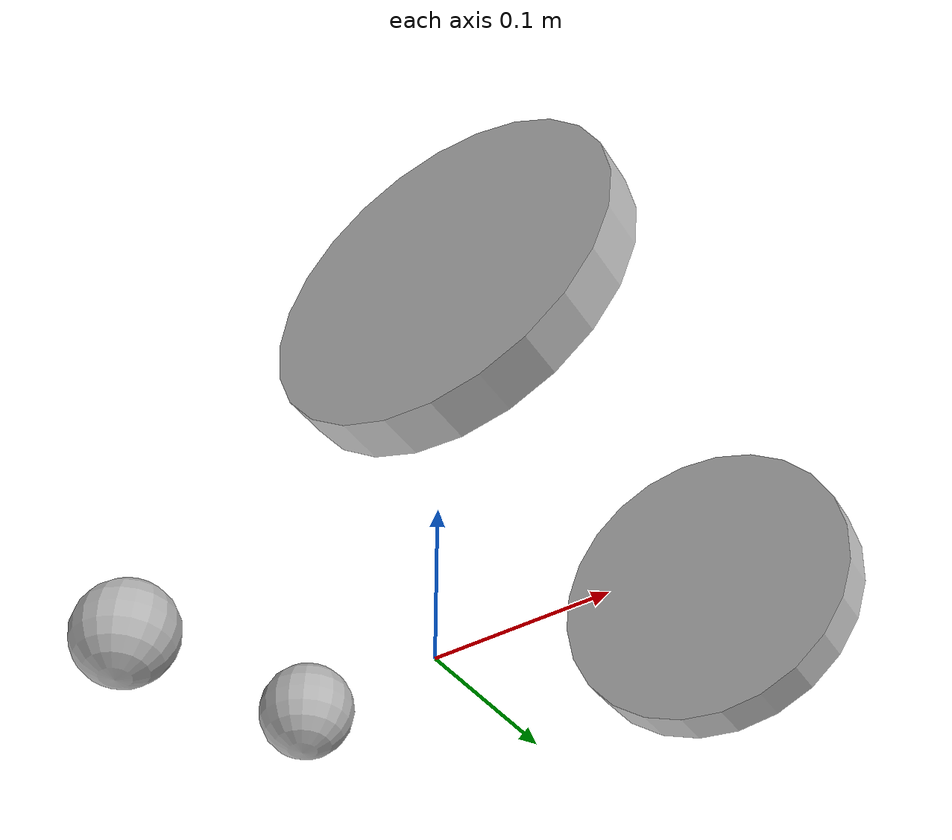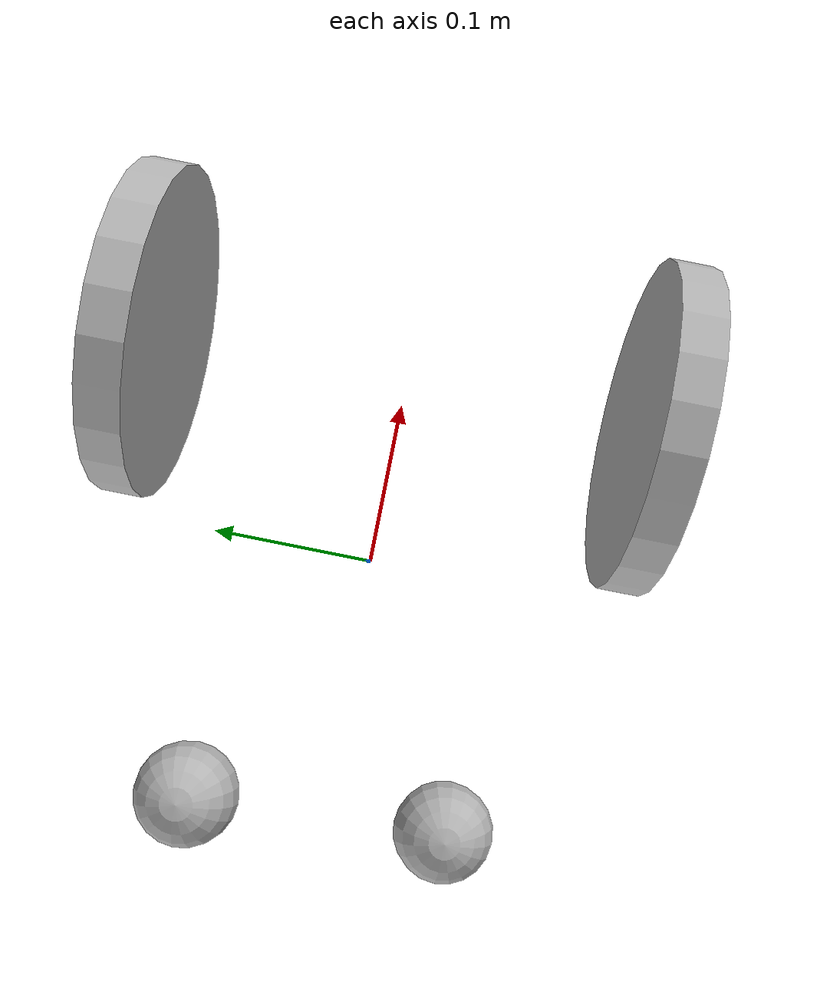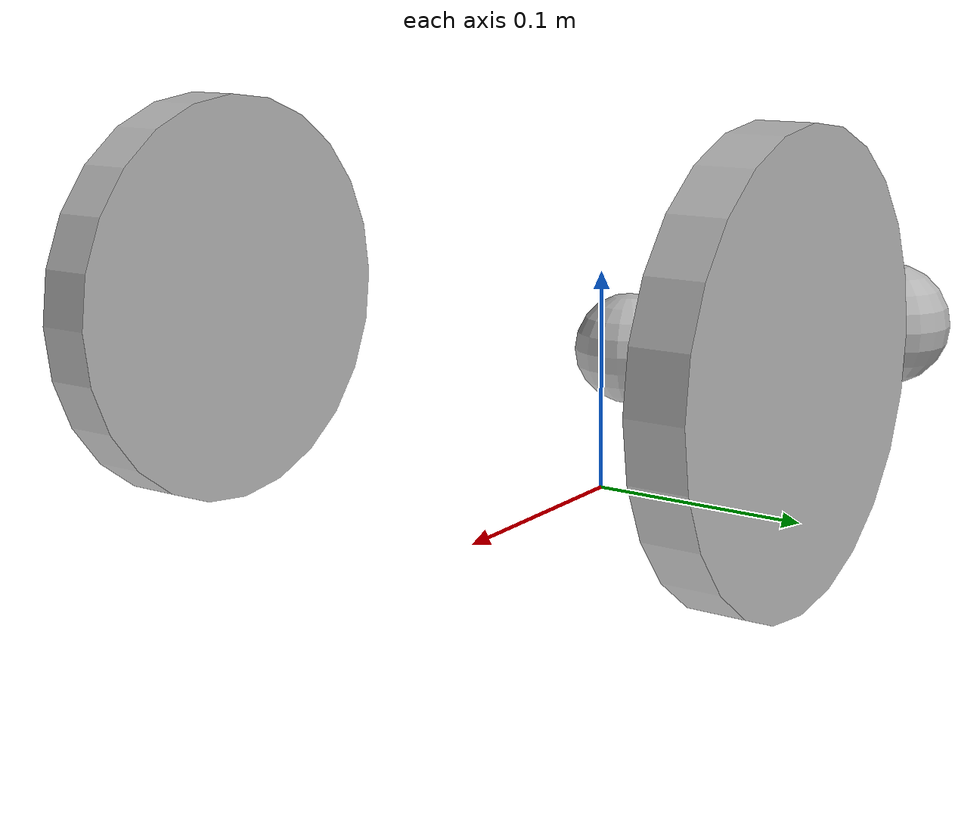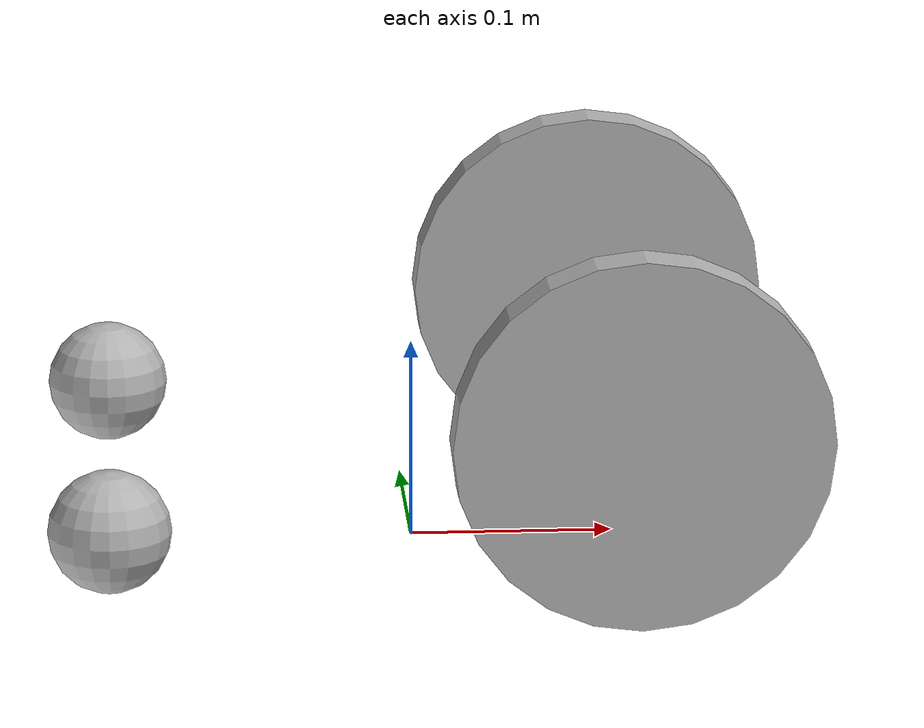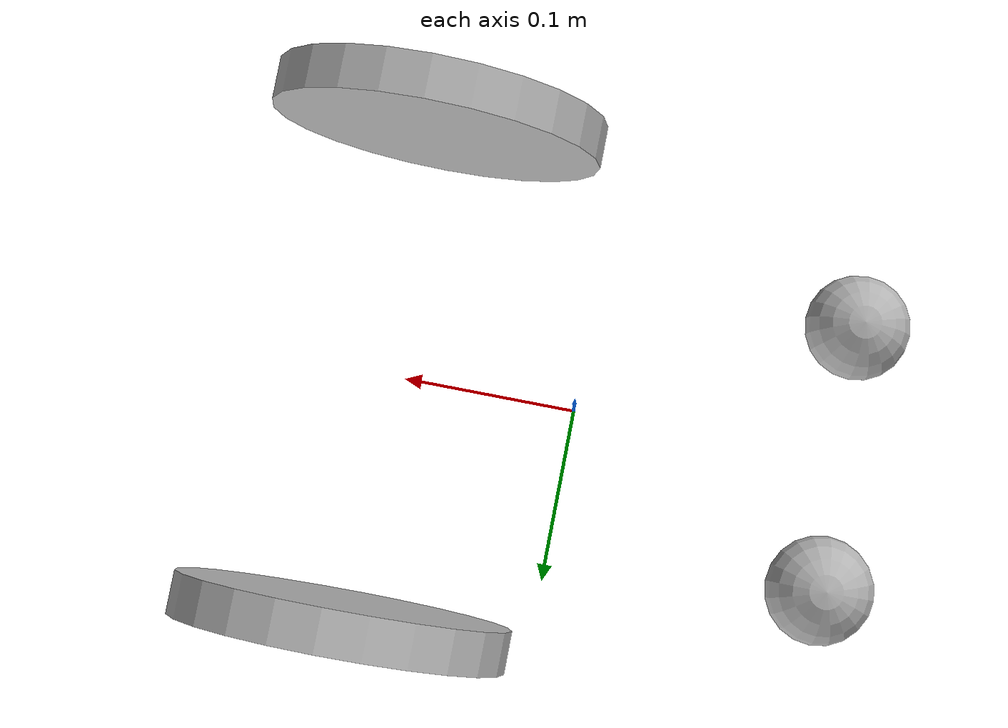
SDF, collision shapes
<?xml version='1.0'?>
<sdf version='1.5'>

  <model name='pico'>

   <link name='base_link'>
	  <visual name='base_link_visual'>
        <pose>0.0765 0 0.3975 1.5708 -5.55112e-17 1.5708</pose>
        <geometry>
          <mesh>
            <scale>0.001 0.001 0.001</scale>
            <uri>model://media/meshes/torso.dae</uri>
          </mesh>
        </geometry>
      </visual>
      <collision name='base_link_collision_left_castor'>
        <pose>-0.15 0.075 0.06 0 -0 0</pose>
        <geometry>
          <sphere>
            <radius>0.03</radius>
          </sphere>
        </geometry>
      </collision>
      <collision name='base_link_collision_right_castor'>
        <pose>-0.15 -0.075 0.03 0 -0 0</pose>
        <geometry>
          <sphere>
            <radius>0.03</radius>
          </sphere>
        </geometry>
      </collision>

      <visual name='base_link_visual_laser'>
        <pose>0.04 0 0.325 0 -0 0</pose>
        <geometry>
          <box>
            <size>0.04 0.04 0.039</size>
          </box>
        </geometry>
      </visual>
      <visual name='base_link_visual_lasertop'>
        <pose>0.04 0 0.349 0 -0 0</pose>
        <geometry>
          <box>
            <size>0.04 0.04 0.01</size>
          </box>
        </geometry>
      </visual>
      <visual name='base_link_visual_left_castor'>
        <pose>-0.15 0.075 0.03 0 -0 0</pose>
        <geometry>
          <sphere>
            <radius>0.03</radius>
          </sphere>
        </geometry>
      </visual>
      <visual name='base_link_visual_right_castor'>
        <pose>-0.15 -0.075 0.03 0 -0 0</pose>
        <geometry>
          <sphere>
            <radius>0.03</radius>
          </sphere>
        </geometry>
      </visual>
           <gravity>1</gravity>
      <velocity_decay>
        <linear>0</linear>
        <angular>0</angular>
      </velocity_decay>
      <self_collide>0</self_collide>

      <sensor name='laser' type='ray'>
        <ray>
          <scan>
            <horizontal>
              <samples>1000</samples>
              <resolution>1</resolution>
              <min_angle>-2.2</min_angle>
              <max_angle>2.2</max_angle>
            </horizontal>
            <vertical>
              <samples>1</samples>
              <resolution>1</resolution>
              <min_angle>0</min_angle>
              <max_angle>0</max_angle>
            </vertical>
          </scan>
          <range>
            <min>0.01</min>
            <max>15</max>
            <resolution>0.01</resolution>
          </range>
		</ray>

      <plugin name="gazebo_ros_laser" filename="libgazebo_ros_laser.so">
        <topicName>/pico/laser_sim</topicName>
         <frameName>/pico/laser/scan</frameName>
        <robotNamespace></robotNamespace>
        <gaussianNoise>0.01</gaussianNoise>
        <always_on>1</always_on>
        <updateRate>30.0</updateRate>
      </plugin>
      <visualize>1</visualize>
      <pose>0.04 0 0.349 0 -0 0</pose>

    </sensor>

      <visual name='head_pitch_link_visual'>
        <pose>-0.06 0 0.93875 0 -0 3.1415</pose>
        <geometry>
          <mesh>
            <scale>0.00254 0.00254 0.00254</scale>
            <uri>model://media/meshes/headnew.dae</uri>
          </mesh>
        </geometry>
        <material>
          <script>
            <name>pico_robot_model_groovy/head</name>
            <uri>model://media/materials/scripts/tue_mats.material</uri>
          </script>
        </material>
      </visual>

      <collision name='left_wheel_collision'>
        <pose>0.1 0.1375 0.09 1.5708 -0 0</pose>

        <geometry>
          <cylinder>
            <length>0.023</length>
            <radius>0.09</radius>
          </cylinder>
        </geometry>
        <surface>
          <contact>
            <ode/>
          </contact>
          <friction>
            <ode/>
          </friction>
        </surface>
        <surface>
          <contact>
            <ode>
              <kp>1e+09</kp>
              <kd>1</kd>
            </ode>
          </contact>
          <friction>
            <ode>
              <mu>5</mu>
              <mu2>5</mu2>
            </ode>
          </friction>
        </surface>
      </collision>
      <visual name='left_wheel_visual'>
      <pose>0.1 0.1375 0.09 1.5708 -0 0</pose>

        <geometry>
          <cylinder>
            <length>0.023</length>
            <radius>0.09</radius>
          </cylinder>
        </geometry>

      </visual>

      <collision name='right_wheel_collision'>
       <pose>0.1 -0.1375 0.09 1.5708 -0 0</pose>
        <geometry>
          <cylinder>
            <length>0.023</length>
            <radius>0.09</radius>
          </cylinder>
        </geometry>
        <surface>
          <contact>
            <ode/>
          </contact>
          <friction>
            <ode/>
          </friction>
        </surface>
        <surface>
          <contact>
            <ode>
              <kp>1e+09</kp>
              <kd>1</kd>
            </ode>
          </contact>
          <friction>
            <ode>
              <mu>5</mu>
              <mu2>5</mu2>
            </ode>
          </friction>
        </surface>
      </collision>
      <visual name='right_wheel_visual'>
        <pose>0.1 -0.1375 0.09 1.5708 -0 0</pose>

        <geometry>
          <cylinder>
            <length>0.023</length>
            <radius>0.09</radius>
          </cylinder>
        </geometry>

      </visual>
      <gravity>1</gravity>
      <velocity_decay>
        <linear>0</linear>
        <angular>0</angular>
      </velocity_decay>
      <self_collide>0</self_collide>

   </link>

<plugin name="Odometry_Plugin" filename="libOdometry_Plugin.so">
       <updateRate>30.0</updateRate>
       <veltopicName>/pico/cmd_vel</veltopicName>
       <odomtopicName>/pico/odom</odomtopicName>
       <robotBaseFrame>/pico/base_link</robotBaseFrame>
       <odomFrame>/pico/odom</odomFrame>

 </plugin>

  </model>

</sdf>
